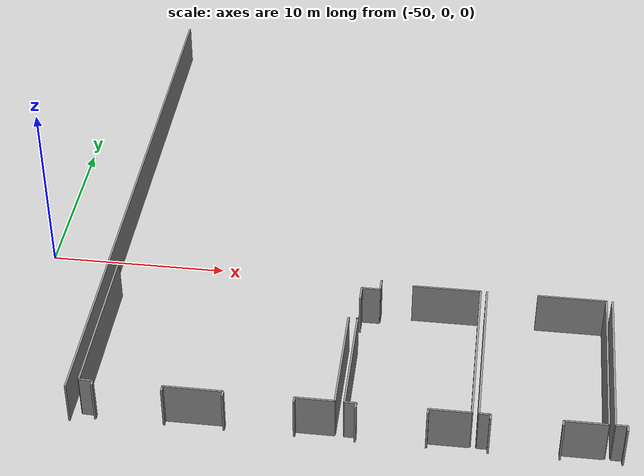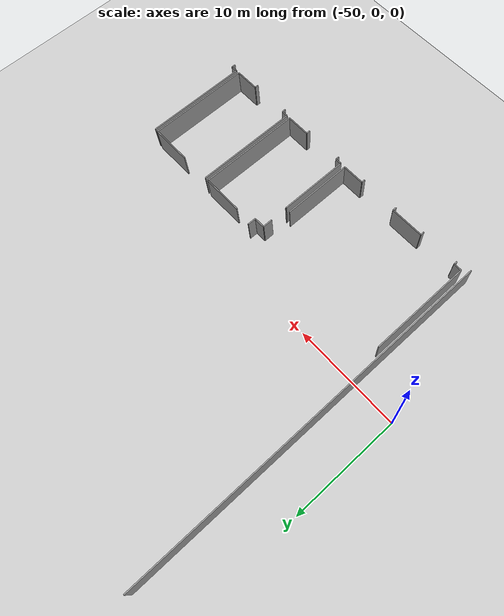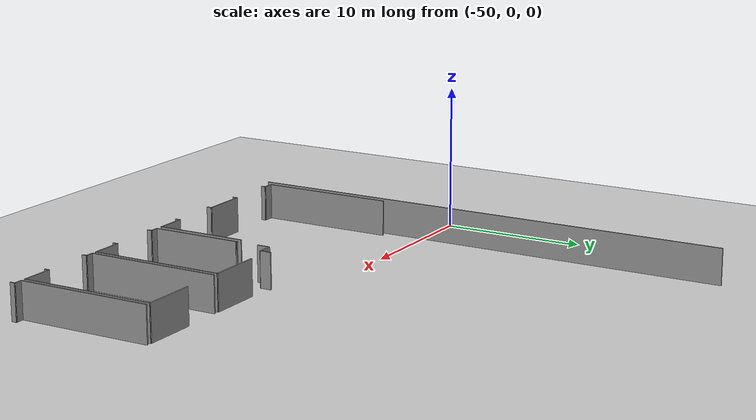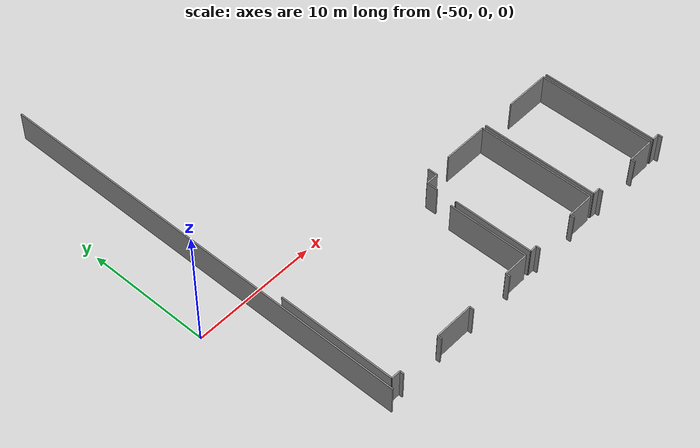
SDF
<sdf version="1.6">
 <world name="default">
  <model name="ground_plane">
   <static>1</static>
   <link name="link">
    <collision name="collision">
     <geometry><plane><normal>0 0 1</normal><size>100 100</size></plane></geometry>
     <surface><friction><ode><mu>100</mu><mu2>50</mu2></ode></friction></surface>
    </collision>
    <visual name="visual">
     <cast_shadows>0</cast_shadows>
     <geometry><plane><normal>0 0 1</normal><size>100 100</size></plane></geometry>
     <material>
      <script><uri>file://media/materials/scripts/gazebo.material</uri><name>Gazebo/Grey</name></script>
     </material>
    </visual>
   </link>
  </model>
  <model name="50045369">
   <static>1</static>
   <link name="Wall_0">
    <collision name="Wall_0_Collision">
     <geometry><box><size>9.40878904388 0.1 2.5</size></box></geometry>
     <pose>4.70439452194 0 1.25 0 0 0</pose>
    </collision>
    <visual name="Wall_0_Visual">
     <pose>4.70439452194 0 1.25 0 0 0</pose>
     <geometry><box><size>9.40878904388 0.1 2.5</size></box></geometry>
     <material>
      <script><uri>file://media/materials/scripts/gazebo.material</uri><name>Gazebo/Grey</name></script>
      <ambient>1 1 1 1</ambient>
     </material>
    </visual>
    <pose>0.571955133297 -34.2055860951 0 0 0 1.57079632679</pose>
   </link>
   <link name="Wall_8">
    <collision name="Wall_8_Collision">
     <geometry><box><size>6.41937021385 0.1 2.5</size></box></geometry>
     <pose>3.20968510692 0 1.25 0 0 0</pose>
    </collision>
    <visual name="Wall_8_Visual">
     <pose>3.20968510692 0 1.25 0 0 0</pose>
     <geometry><box><size>6.41937021385 0.1 2.5</size></box></geometry>
     <material>
      <script><uri>file://media/materials/scripts/gazebo.material</uri><name>Gazebo/Grey</name></script>
      <ambient>1 1 1 1</ambient>
     </material>
    </visual>
    <pose>13.873089511 -27.7717263512 0 0 0 -1.57079632679</pose>
   </link>
   <link name="Wall_9">
    <collision name="Wall_9_Collision">
     <geometry><box><size>2.07352800991 0.1 2.5</size></box></geometry>
     <pose>1.03676400496 0 1.25 0 0 0</pose>
    </collision>
    <visual name="Wall_9_Visual">
     <pose>1.03676400496 0 1.25 0 0 0</pose>
     <geometry><box><size>2.07352800991 0.1 2.5</size></box></geometry>
     <material>
      <script><uri>file://media/materials/scripts/gazebo.material</uri><name>Gazebo/Grey</name></script>
      <ambient>1 1 1 1</ambient>
     </material>
    </visual>
    <pose>13.873089511 -34.1910965651 0 0 0 3.14159265359</pose>
   </link>
   <link name="Wall_10">
    <collision name="Wall_10_Collision">
     <geometry><box><size>0.348765530171 0.1 2.5</size></box></geometry>
     <pose>0.174382765085 0 1.25 0 0 0</pose>
    </collision>
    <visual name="Wall_10_Visual">
     <pose>0.174382765085 0 1.25 0 0 0</pose>
     <geometry><box><size>0.348765530171 0.1 2.5</size></box></geometry>
     <material>
      <script><uri>file://media/materials/scripts/gazebo.material</uri><name>Gazebo/Grey</name></script>
      <ambient>1 1 1 1</ambient>
     </material>
    </visual>
    <pose>11.7995615011 -34.1910965651 0 0 0 -1.57079632679</pose>
   </link>
   <link name="Wall_11">
    <collision name="Wall_11_Collision">
     <geometry><box><size>0.347875822186 0.1 2.5</size></box></geometry>
     <pose>0.173937911093 0 1.25 0 0 0</pose>
    </collision>
    <visual name="Wall_11_Visual">
     <pose>0.173937911093 0 1.25 0 0 0</pose>
     <geometry><box><size>0.347875822186 0.1 2.5</size></box></geometry>
     <material>
      <script><uri>file://media/materials/scripts/gazebo.material</uri><name>Gazebo/Grey</name></script>
      <ambient>1 1 1 1</ambient>
     </material>
    </visual>
    <pose>8.11324711639 -34.5398620953 0 0 0 1.57079632679</pose>
   </link>
   <link name="Wall_12">
    <collision name="Wall_12_Collision">
     <geometry><box><size>3.14804105367 0.1 2.5</size></box></geometry>
     <pose>1.57402052683 0 1.25 0 0 0</pose>
    </collision>
    <visual name="Wall_12_Visual">
     <pose>1.57402052683 0 1.25 0 0 0</pose>
     <geometry><box><size>3.14804105367 0.1 2.5</size></box></geometry>
     <material>
      <script><uri>file://media/materials/scripts/gazebo.material</uri><name>Gazebo/Grey</name></script>
      <ambient>1 1 1 1</ambient>
     </material>
    </visual>
    <pose>8.11324711639 -34.1919862731 0 0 0 3.14159265359</pose>
   </link>
   <link name="Wall_13">
    <collision name="Wall_13_Collision">
     <geometry><box><size>0.344062787964 0.1 2.5</size></box></geometry>
     <pose>0.172031393982 0 1.25 0 0 0</pose>
    </collision>
    <visual name="Wall_13_Visual">
     <pose>0.172031393982 0 1.25 0 0 0</pose>
     <geometry><box><size>0.344062787964 0.1 2.5</size></box></geometry>
     <material>
      <script><uri>file://media/materials/scripts/gazebo.material</uri><name>Gazebo/Grey</name></script>
      <ambient>1 1 1 1</ambient>
     </material>
    </visual>
    <pose>4.96520606272 -34.1919862731 0 0 0 -1.57079632679</pose>
   </link>
   <link name="Wall_14">
    <collision name="Wall_14_Collision">
     <geometry><box><size>0.311016491373 0.1 2.5</size></box></geometry>
     <pose>0.155508245687 0 1.25 0 0 0</pose>
    </collision>
    <visual name="Wall_14_Visual">
     <pose>0.155508245687 0 1.25 0 0 0</pose>
     <geometry><box><size>0.311016491373 0.1 2.5</size></box></geometry>
     <material>
      <script><uri>file://media/materials/scripts/gazebo.material</uri><name>Gazebo/Grey</name></script>
      <ambient>1 1 1 1</ambient>
     </material>
    </visual>
    <pose>1.31142957008 -34.536049061 0 0 0 1.57079632679</pose>
   </link>
   <link name="Wall_15">
    <collision name="Wall_15_Collision">
     <geometry><box><size>0.739730091336 0.1 2.5</size></box></geometry>
     <pose>0.369865045668 0 1.25 0 0 0</pose>
    </collision>
    <visual name="Wall_15_Visual">
     <pose>0.369865045668 0 1.25 0 0 0</pose>
     <geometry><box><size>0.739730091336 0.1 2.5</size></box></geometry>
     <material>
      <script><uri>file://media/materials/scripts/gazebo.material</uri><name>Gazebo/Grey</name></script>
      <ambient>1 1 1 1</ambient>
     </material>
    </visual>
    <pose>1.31142957008 -34.2250325697 0 0 0 3.1153010165</pose>
   </link>
   <link name="Wall_16">
    <collision name="Wall_16_Collision">
     <geometry><box><size>6.36026818341 0.1 2.5</size></box></geometry>
     <pose>3.1801340917 0 1.25 0 0 0</pose>
    </collision>
    <visual name="Wall_16_Visual">
     <pose>3.1801340917 0 1.25 0 0 0</pose>
     <geometry><box><size>6.36026818341 0.1 2.5</size></box></geometry>
     <material>
      <script><uri>file://media/materials/scripts/gazebo.material</uri><name>Gazebo/Grey</name></script>
      <ambient>1 1 1 1</ambient>
     </material>
    </visual>
    <pose>14.3629373074 -34.204569286 0 0 0 1.57079632679</pose>
   </link>
   <link name="Wall_17">
    <collision name="Wall_17_Collision">
     <geometry><box><size>0.0283435543834 0.1 2.5</size></box></geometry>
     <pose>0.0141717771917 0 1.25 0 0 0</pose>
    </collision>
    <visual name="Wall_17_Visual">
     <pose>0.0141717771917 0 1.25 0 0 0</pose>
     <geometry><box><size>0.0283435543834 0.1 2.5</size></box></geometry>
     <material>
      <script><uri>file://media/materials/scripts/gazebo.material</uri><name>Gazebo/Grey</name></script>
      <ambient>1 1 1 1</ambient>
     </material>
    </visual>
    <pose>14.3629373074 -27.8443011026 0 0 0 3.14159265359</pose>
   </link>
   <link name="Wall_18">
    <collision name="Wall_18_Collision">
     <geometry><box><size>0.0683804137142 0.1 2.5</size></box></geometry>
     <pose>0.0341902068571 0 1.25 0 0 0</pose>
    </collision>
    <visual name="Wall_18_Visual">
     <pose>0.0341902068571 0 1.25 0 0 0</pose>
     <geometry><box><size>0.0683804137142 0.1 2.5</size></box></geometry>
     <material>
      <script><uri>file://media/materials/scripts/gazebo.material</uri><name>Gazebo/Grey</name></script>
      <ambient>1 1 1 1</ambient>
     </material>
    </visual>
    <pose>14.334593753 -27.8443011026 0 0 0 1.57079632679</pose>
   </link>
   <link name="Wall_19">
    <collision name="Wall_19_Collision">
     <geometry><box><size>0.901909694639 0.1 2.5</size></box></geometry>
     <pose>0.45095484732 0 1.25 0 0 0</pose>
    </collision>
    <visual name="Wall_19_Visual">
     <pose>0.45095484732 0 1.25 0 0 0</pose>
     <geometry><box><size>0.901909694639 0.1 2.5</size></box></geometry>
     <material>
      <script><uri>file://media/materials/scripts/gazebo.material</uri><name>Gazebo/Grey</name></script>
      <ambient>1 1 1 1</ambient>
     </material>
    </visual>
    <pose>14.334593753 -26.1941469925 0 0 0 1.57079632679</pose>
   </link>
   <link name="Wall_20">
    <collision name="Wall_20_Collision">
     <geometry><box><size>1.0197324521 0.1 2.5</size></box></geometry>
     <pose>0.509866226049 0 1.25 0 0 0</pose>
    </collision>
    <visual name="Wall_20_Visual">
     <pose>0.509866226049 0 1.25 0 0 0</pose>
     <geometry><box><size>1.0197324521 0.1 2.5</size></box></geometry>
     <material>
      <script><uri>file://media/materials/scripts/gazebo.material</uri><name>Gazebo/Grey</name></script>
      <ambient>1 1 1 1</ambient>
     </material>
    </visual>
    <pose>14.334593753 -25.2922372978 0 0 0 0.0</pose>
   </link>
   <link name="Wall_21">
    <collision name="Wall_21_Collision">
     <geometry><box><size>0.78052810524 0.1 2.5</size></box></geometry>
     <pose>0.39026405262 0 1.25 0 0 0</pose>
    </collision>
    <visual name="Wall_21_Visual">
     <pose>0.39026405262 0 1.25 0 0 0</pose>
     <geometry><box><size>0.78052810524 0.1 2.5</size></box></geometry>
     <material>
      <script><uri>file://media/materials/scripts/gazebo.material</uri><name>Gazebo/Grey</name></script>
      <ambient>1 1 1 1</ambient>
     </material>
    </visual>
    <pose>15.3543262051 -25.2922372978 0 0 0 1.57079632679</pose>
   </link>
   <link name="Wall_25">
    <collision name="Wall_25_Collision">
     <geometry><box><size>3.73105398621 0.1 2.5</size></box></geometry>
     <pose>1.8655269931 0 1.25 0 0 0</pose>
    </collision>
    <visual name="Wall_25_Visual">
     <pose>1.8655269931 0 1.25 0 0 0</pose>
     <geometry><box><size>3.73105398621 0.1 2.5</size></box></geometry>
     <material>
      <script><uri>file://media/materials/scripts/gazebo.material</uri><name>Gazebo/Grey</name></script>
      <ambient>1 1 1 1</ambient>
     </material>
    </visual>
    <pose>17.1095929586 -24.8041689174 0 0 0 0.0</pose>
   </link>
   <link name="Wall_26">
    <collision name="Wall_26_Collision">
     <geometry><box><size>9.38540243399 0.1 2.5</size></box></geometry>
     <pose>4.69270121699 0 1.25 0 0 0</pose>
    </collision>
    <visual name="Wall_26_Visual">
     <pose>4.69270121699 0 1.25 0 0 0</pose>
     <geometry><box><size>9.38540243399 0.1 2.5</size></box></geometry>
     <material>
      <script><uri>file://media/materials/scripts/gazebo.material</uri><name>Gazebo/Grey</name></script>
      <ambient>1 1 1 1</ambient>
     </material>
    </visual>
    <pose>20.8406469448 -24.8041689174 0 0 0 -1.57079632679</pose>
   </link>
   <link name="Wall_27">
    <collision name="Wall_27_Collision">
     <geometry><box><size>2.21448317499 0.1 2.5</size></box></geometry>
     <pose>1.10724158749 0 1.25 0 0 0</pose>
    </collision>
    <visual name="Wall_27_Visual">
     <pose>1.10724158749 0 1.25 0 0 0</pose>
     <geometry><box><size>2.21448317499 0.1 2.5</size></box></geometry>
     <material>
      <script><uri>file://media/materials/scripts/gazebo.material</uri><name>Gazebo/Grey</name></script>
      <ambient>1 1 1 1</ambient>
     </material>
    </visual>
    <pose>20.8406469448 -34.1895713514 0 0 0 3.14159265359</pose>
   </link>
   <link name="Wall_28">
    <collision name="Wall_28_Collision">
     <geometry><box><size>0.351561755267 0.1 2.5</size></box></geometry>
     <pose>0.175780877633 0 1.25 0 0 0</pose>
    </collision>
    <visual name="Wall_28_Visual">
     <pose>0.175780877633 0 1.25 0 0 0</pose>
     <geometry><box><size>0.351561755267 0.1 2.5</size></box></geometry>
     <material>
      <script><uri>file://media/materials/scripts/gazebo.material</uri><name>Gazebo/Grey</name></script>
      <ambient>1 1 1 1</ambient>
     </material>
    </visual>
    <pose>18.6261637698 -34.1895713514 0 0 0 -1.57079632679</pose>
   </link>
   <link name="Wall_29">
    <collision name="Wall_29_Collision">
     <geometry><box><size>0.340631057164 0.1 2.5</size></box></geometry>
     <pose>0.170315528582 0 1.25 0 0 0</pose>
    </collision>
    <visual name="Wall_29_Visual">
     <pose>0.170315528582 0 1.25 0 0 0</pose>
     <geometry><box><size>0.340631057164 0.1 2.5</size></box></geometry>
     <material>
      <script><uri>file://media/materials/scripts/gazebo.material</uri><name>Gazebo/Grey</name></script>
      <ambient>1 1 1 1</ambient>
     </material>
    </visual>
    <pose>14.9556099266 -34.5411331067 0 0 0 1.57079632679</pose>
   </link>
   <link name="Wall_30">
    <collision name="Wall_30_Collision">
     <geometry><box><size>0.592686574849 0.1 2.5</size></box></geometry>
     <pose>0.296343287424 0 1.25 0 0 0</pose>
    </collision>
    <visual name="Wall_30_Visual">
     <pose>0.296343287424 0 1.25 0 0 0</pose>
     <geometry><box><size>0.592686574849 0.1 2.5</size></box></geometry>
     <material>
      <script><uri>file://media/materials/scripts/gazebo.material</uri><name>Gazebo/Grey</name></script>
      <ambient>1 1 1 1</ambient>
     </material>
    </visual>
    <pose>14.9556099266 -34.2005020495 0 0 0 -3.13473022647</pose>
   </link>
   <link name="Wall_31">
    <collision name="Wall_31_Collision">
     <geometry><box><size>9.40357789711 0.1 2.5</size></box></geometry>
     <pose>4.70178894856 0 1.25 0 0 0</pose>
    </collision>
    <visual name="Wall_31_Visual">
     <pose>4.70178894856 0 1.25 0 0 0</pose>
     <geometry><box><size>9.40357789711 0.1 2.5</size></box></geometry>
     <material>
      <script><uri>file://media/materials/scripts/gazebo.material</uri><name>Gazebo/Grey</name></script>
      <ambient>1 1 1 1</ambient>
     </material>
    </visual>
    <pose>21.1886498681 -34.1983413301 0 0 0 1.57079632679</pose>
   </link>
   <link name="Wall_37">
    <collision name="Wall_37_Collision">
     <geometry><box><size>3.73448571701 0.1 2.5</size></box></geometry>
     <pose>1.8672428585 0 1.25 0 0 0</pose>
    </collision>
    <visual name="Wall_37_Visual">
     <pose>1.8672428585 0 1.25 0 0 0</pose>
     <geometry><box><size>3.73448571701 0.1 2.5</size></box></geometry>
     <material>
      <script><uri>file://media/materials/scripts/gazebo.material</uri><name>Gazebo/Grey</name></script>
      <ambient>1 1 1 1</ambient>
     </material>
    </visual>
    <pose>23.9508118585 -24.7987035684 0 0 0 0.0</pose>
   </link>
   <link name="Wall_38">
    <collision name="Wall_38_Collision">
     <geometry><box><size>9.40179848114 0.1 2.5</size></box></geometry>
     <pose>4.70089924057 0 1.25 0 0 0</pose>
    </collision>
    <visual name="Wall_38_Visual">
     <pose>4.70089924057 0 1.25 0 0 0</pose>
     <geometry><box><size>9.40179848114 0.1 2.5</size></box></geometry>
     <material>
      <script><uri>file://media/materials/scripts/gazebo.material</uri><name>Gazebo/Grey</name></script>
      <ambient>1 1 1 1</ambient>
     </material>
    </visual>
    <pose>27.6852975755 -24.7987035684 0 0 0 -1.57079632679</pose>
   </link>
   <link name="Wall_39">
    <collision name="Wall_39_Collision">
     <geometry><box><size>2.25096120238 0.1 2.5</size></box></geometry>
     <pose>1.12548060119 0 1.25 0 0 0</pose>
    </collision>
    <visual name="Wall_39_Visual">
     <pose>1.12548060119 0 1.25 0 0 0</pose>
     <geometry><box><size>2.25096120238 0.1 2.5</size></box></geometry>
     <material>
      <script><uri>file://media/materials/scripts/gazebo.material</uri><name>Gazebo/Grey</name></script>
      <ambient>1 1 1 1</ambient>
     </material>
    </visual>
    <pose>27.6852975755 -34.2005020495 0 0 0 3.14159265359</pose>
   </link>
   <link name="Wall_40">
    <collision name="Wall_40_Collision">
     <geometry><box><size>0.335165708112 0.1 2.5</size></box></geometry>
     <pose>0.167582854056 0 1.25 0 0 0</pose>
    </collision>
    <visual name="Wall_40_Visual">
     <pose>0.167582854056 0 1.25 0 0 0</pose>
     <geometry><box><size>0.335165708112 0.1 2.5</size></box></geometry>
     <material>
      <script><uri>file://media/materials/scripts/gazebo.material</uri><name>Gazebo/Grey</name></script>
      <ambient>1 1 1 1</ambient>
     </material>
    </visual>
    <pose>25.4343363732 -34.2005020495 0 0 0 -1.57079632679</pose>
   </link>
   <link name="Wall_41">
    <collision name="Wall_41_Collision">
     <geometry><box><size>0.341012360586 0.1 2.5</size></box></geometry>
     <pose>0.170506180293 0 1.25 0 0 0</pose>
    </collision>
    <visual name="Wall_41_Visual">
     <pose>0.170506180293 0 1.25 0 0 0</pose>
     <geometry><box><size>0.341012360586 0.1 2.5</size></box></geometry>
     <material>
      <script><uri>file://media/materials/scripts/gazebo.material</uri><name>Gazebo/Grey</name></script>
      <ambient>1 1 1 1</ambient>
     </material>
    </visual>
    <pose>21.7772552509 -34.5356677576 0 0 0 1.57079632679</pose>
   </link>
   <link name="Wall_42">
    <collision name="Wall_42_Collision">
     <geometry><box><size>0.588616923546 0.1 2.5</size></box></geometry>
     <pose>0.294308461773 0 1.25 0 0 0</pose>
    </collision>
    <visual name="Wall_42_Visual">
     <pose>0.294308461773 0 1.25 0 0 0</pose>
     <geometry><box><size>0.588616923546 0.1 2.5</size></box></geometry>
     <material>
      <script><uri>file://media/materials/scripts/gazebo.material</uri><name>Gazebo/Grey</name></script>
      <ambient>1 1 1 1</ambient>
     </material>
    </visual>
    <pose>21.7772552509 -34.194655397 0 0 0 -3.13533058904</pose>
   </link>
   <link name="Wall_43">
    <collision name="Wall_43_Collision">
     <geometry><box><size>9.40688252677 0.1 2.5</size></box></geometry>
     <pose>4.70344126339 0 1.25 0 0 0</pose>
    </collision>
    <visual name="Wall_43_Visual">
     <pose>4.70344126339 0 1.25 0 0 0</pose>
     <geometry><box><size>9.40688252677 0.1 2.5</size></box></geometry>
     <material>
      <script><uri>file://media/materials/scripts/gazebo.material</uri><name>Gazebo/Grey</name></script>
      <ambient>1 1 1 1</ambient>
     </material>
    </visual>
    <pose>28.0123288107 -34.2055860951 0 0 0 1.57079632679</pose>
   </link>
   <link name="Wall_55">
    <collision name="Wall_55_Collision">
     <geometry><box><size>0.349019732452 0.1 2.5</size></box></geometry>
     <pose>0.174509866226 0 1.25 0 0 0</pose>
    </collision>
    <visual name="Wall_55_Visual">
     <pose>0.174509866226 0 1.25 0 0 0</pose>
     <geometry><box><size>0.349019732452 0.1 2.5</size></box></geometry>
     <material>
      <script><uri>file://media/materials/scripts/gazebo.material</uri><name>Gazebo/Grey</name></script>
      <ambient>1 1 1 1</ambient>
     </material>
    </visual>
    <pose>28.6109751835 -34.5443106352 0 0 0 1.57079632679</pose>
   </link>
   <link name="Wall_56">
    <collision name="Wall_56_Collision">
     <geometry><box><size>0.598734891846 0.1 2.5</size></box></geometry>
     <pose>0.299367445923 0 1.25 0 0 0</pose>
    </collision>
    <visual name="Wall_56_Visual">
     <pose>0.299367445923 0 1.25 0 0 0</pose>
     <geometry><box><size>0.598734891846 0.1 2.5</size></box></geometry>
     <material>
      <script><uri>file://media/materials/scripts/gazebo.material</uri><name>Gazebo/Grey</name></script>
      <ambient>1 1 1 1</ambient>
     </material>
    </visual>
    <pose>28.6109751835 -34.1952909027 0 0 0 -3.12439689646</pose>
   </link>
   <link name="Wall_255">
    <collision name="Wall_255_Collision">
     <geometry><box><size>34.7978774109 0.1 2.5</size></box></geometry>
     <pose>17.3989387055 0 1.25 0 0 0</pose>
    </collision>
    <visual name="Wall_255_Visual">
     <pose>17.3989387055 0 1.25 0 0 0</pose>
     <geometry><box><size>34.7978774109 0.1 2.5</size></box></geometry>
     <material>
      <script><uri>file://media/materials/scripts/gazebo.material</uri><name>Gazebo/Grey</name></script>
      <ambient>1 1 1 1</ambient>
     </material>
    </visual>
    <pose>0.0 -34.7978774109 0 0 0 1.57079632679</pose>
   </link>
   <pose>-45.95 21.8978774109 0 0 0 0</pose>
  </model>
 </world>
</sdf>
